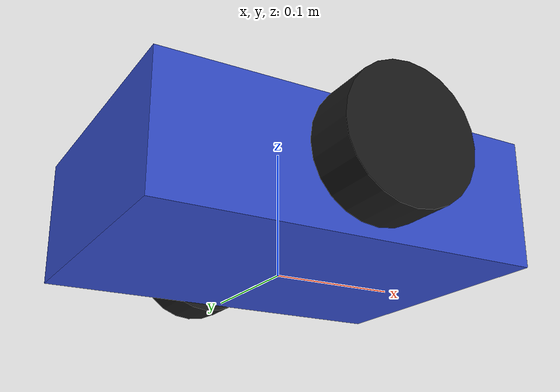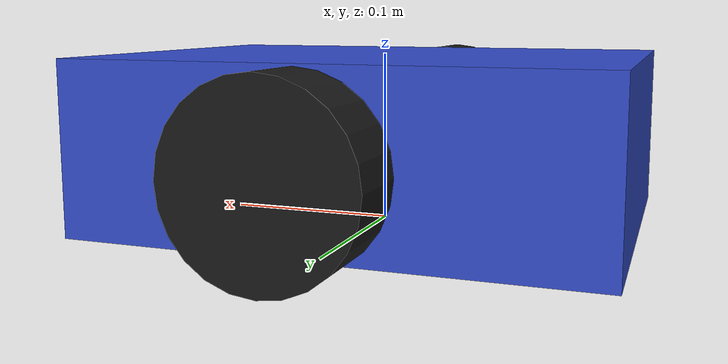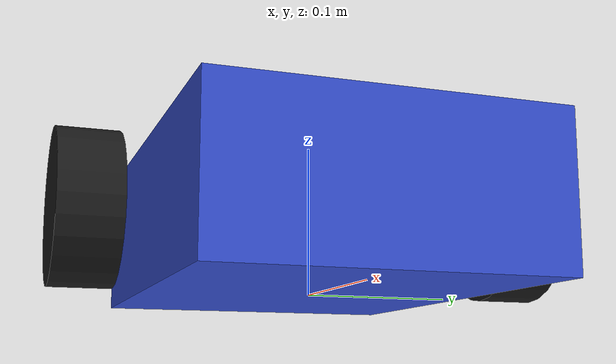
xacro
<?xml version="1.0"?>
<robot xmlns:xacro="http://www.ros.org/wiki/xacro" name="mdrobot_diffbot">

  <xacro:arg name="use_mock_hardware" default="true"/>
  <xacro:arg name="port" default="/dev/ttyUSB0"/>
  <xacro:arg name="baudrate" default="19200"/>
  <xacro:arg name="motor_id" default="1"/>
  <!-- PNT50 measured: 12 counts/rev (hall, 3 x 4-pole). Measure for your motor. -->
  <xacro:arg name="counts_per_rev" default="12.0"/>
  <!-- Per-wheel direction (mirrored mount). Default false; drive, observe, then set
       true on whichever side spins backwards. -->
  <xacro:arg name="reverse_left" default="false"/>
  <xacro:arg name="reverse_right" default="false"/>

  <!-- geometry (must match diff_drive_controller wheel_radius / wheel_separation) -->
  <xacro:property name="wheel_radius" value="0.05"/>
  <xacro:property name="wheel_width" value="0.04"/>
  <xacro:property name="wheel_separation" value="0.30"/>
  <xacro:property name="base_len" value="0.30"/>
  <xacro:property name="base_wid" value="0.22"/>
  <xacro:property name="base_hei" value="0.10"/>
  <xacro:property name="caster_radius" value="0.025"/>

  <material name="blue"><color rgba="0.2 0.3 0.8 1.0"/></material>
  <material name="dark"><color rgba="0.1 0.1 0.1 1.0"/></material>
  <material name="grey"><color rgba="0.5 0.5 0.5 1.0"/></material>

  <xacro:macro name="box_inertial" params="m x y z">
    <inertial>
      <mass value="${m}"/>
      <inertia ixx="${m*(y*y+z*z)/12}" iyy="${m*(x*x+z*z)/12}" izz="${m*(x*x+y*y)/12}"
               ixy="0" ixz="0" iyz="0"/>
    </inertial>
  </xacro:macro>
  <xacro:macro name="cyl_inertial" params="m r l">
    <inertial>
      <mass value="${m}"/>
      <inertia ixx="${m*(3*r*r+l*l)/12}" iyy="${m*(3*r*r+l*l)/12}" izz="${m*r*r/2}"
               ixy="0" ixz="0" iyz="0"/>
    </inertial>
  </xacro:macro>

  <!-- ground projection -->
  <link name="base_footprint"/>

  <!-- body, origin at wheel-axle height -->
  <link name="base_link">
    <visual>
      <geometry><box size="${base_len} ${base_wid} ${base_hei}"/></geometry>
      <material name="blue"/>
    </visual>
    <collision>
      <geometry><box size="${base_len} ${base_wid} ${base_hei}"/></geometry>
    </collision>
    <xacro:box_inertial m="5.0" x="${base_len}" y="${base_wid}" z="${base_hei}"/>
  </link>
  <joint name="base_joint" type="fixed">
    <parent link="base_footprint"/>
    <child link="base_link"/>
    <origin xyz="0 0 ${wheel_radius}" rpy="0 0 0"/>
  </joint>

  <!-- wheels: continuous, axle along y, roll about y -->
  <xacro:macro name="wheel" params="name y">
    <link name="${name}">
      <visual>
        <origin xyz="0 0 0" rpy="${pi/2} 0 0"/>
        <geometry><cylinder radius="${wheel_radius}" length="${wheel_width}"/></geometry>
        <material name="dark"/>
      </visual>
      <collision>
        <origin xyz="0 0 0" rpy="${pi/2} 0 0"/>
        <geometry><cylinder radius="${wheel_radius}" length="${wheel_width}"/></geometry>
      </collision>
      <xacro:cyl_inertial m="0.5" r="${wheel_radius}" l="${wheel_width}"/>
    </link>
    <joint name="${name}_joint" type="continuous">
      <parent link="base_link"/>
      <child link="${name}"/>
      <origin xyz="0 ${y} 0" rpy="0 0 0"/>
      <axis xyz="0 1 0"/>
    </joint>
  </xacro:macro>
  <xacro:wheel name="left_wheel" y="${wheel_separation/2}"/>
  <xacro:wheel name="right_wheel" y="${-wheel_separation/2}"/>

  <!-- front caster (sphere) for support -->
  <link name="caster">
    <visual>
      <geometry><sphere radius="${caster_radius}"/></geometry>
      <material name="grey"/>
    </visual>
    <collision><geometry><sphere radius="${caster_radius}"/></geometry></collision>
    <inertial>
      <mass value="0.1"/>
      <inertia ixx="1e-4" iyy="1e-4" izz="1e-4" ixy="0" ixz="0" iyz="0"/>
    </inertial>
  </link>
  <joint name="caster_joint" type="fixed">
    <parent link="base_link"/>
    <child link="caster"/>
    <origin xyz="${base_len/2 - caster_radius} 0 ${caster_radius - wheel_radius}" rpy="0 0 0"/>
  </joint>

  <!-- ros2_control -->
  <xacro:include filename="$(find mdrobot_diffbot_example)/description/diffbot.ros2_control.xacro"/>
  <xacro:diffbot_ros2_control
      name="mdrobot_diffbot"
      use_mock_hardware="$(arg use_mock_hardware)"
      port="$(arg port)"
      baudrate="$(arg baudrate)"
      motor_id="$(arg motor_id)"
      counts_per_rev="$(arg counts_per_rev)"
      reverse_left="$(arg reverse_left)"
      reverse_right="$(arg reverse_right)"/>
</robot>
